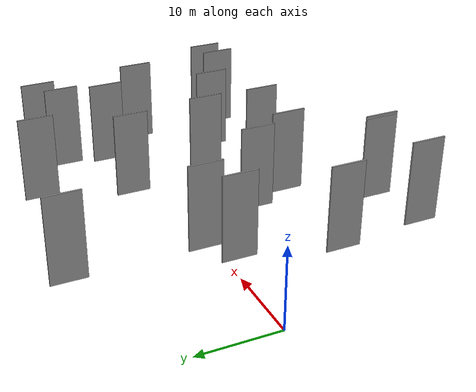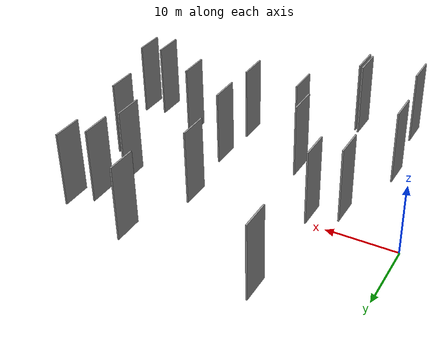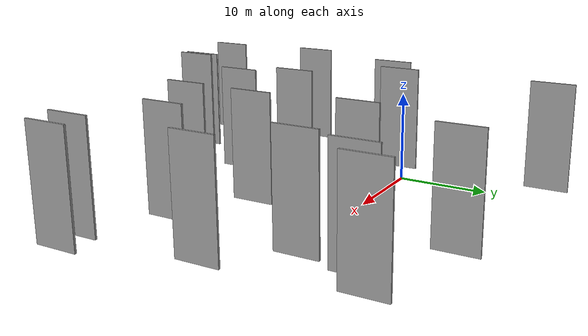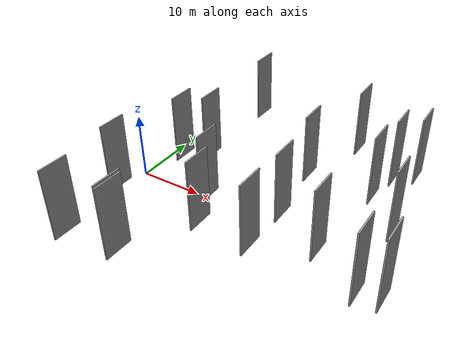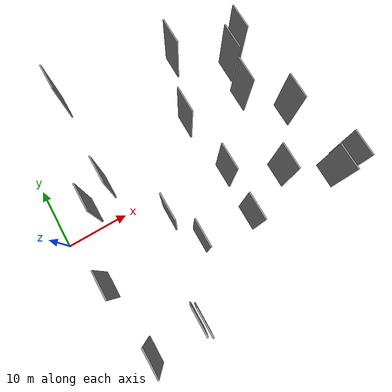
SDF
<sdf version="1.6">
 <world name="default">
  <scene>
   <sky><clouds><speed>12</speed></clouds></sky>
   <ambient>0.4 0.4 0.4 1</ambient>
   <background>0.7 0.7 0.7 1</background>
   <shadows>1</shadows>
  </scene>
  <gravity>0 0 -9.8066</gravity>
  <magnetic_field>6e-06 2.3e-05 -4.2e-05</magnetic_field>
  <physics default="0" name="default_physics" type="ode">
   <ode>
    <solver>
     <type>quick</type>
     <iters>10</iters>
     <sor>1.0</sor>
     <use_dynamic_moi_rescaling>0</use_dynamic_moi_rescaling>
    </solver>
    <constraints>
     <cfm>0</cfm>
     <erp>0.2</erp>
     <contact_max_correcting_vel>100</contact_max_correcting_vel>
     <contact_surface_layer>0.001</contact_surface_layer>
    </constraints>
   </ode>
   <max_step_size>0.004</max_step_size>
   <real_time_factor>1</real_time_factor>
   <real_time_update_rate>250</real_time_update_rate>
  </physics>
  <light name="sun" type="directional">
   <pose>0 0 10 0 0 0</pose>
   <diffuse>0.8 0.8 0.8 1</diffuse>
   <specular>0.2 0.2 0.2 1</specular>
   <attenuation>
    <range>1000</range>
    <constant>0.9</constant>
    <linear>0.01</linear>
    <quadratic>0.001</quadratic>
   </attenuation>
   <direction>-0.5 0.1 -0.9</direction>
  </light>
  <model name="grey_wall_1">
   <static>1</static>
   <pose>42.0587 -9.9786 5.0 0.000000 0.000000 1.570796</pose>
   <link name="link">
    <pose>0 0 5.00 0 0 0</pose>
    <collision name="collision"><geometry><box><size>4.00 0.2 10.00</size></box></geometry></collision>
    <visual name="visual">
     <cast_shadows>0</cast_shadows>
     <geometry><box><size>4.00 0.2 10.00</size></box></geometry>
     <material>
      <script>
       <uri>model://grey_wall/materials/scripts</uri>
       <uri>model://grey_wall/materials/textures</uri>
       <name>vrc/grey_wall</name>
      </script>
     </material>
    </visual>
   </link>
  </model>
  <model name="grey_wall_2">
   <static>1</static>
   <pose>25.6457 -10.2068 5.0 0.000000 0.000000 1.570796</pose>
   <link name="link">
    <pose>0 0 5.00 0 0 0</pose>
    <collision name="collision"><geometry><box><size>4.00 0.2 10.00</size></box></geometry></collision>
    <visual name="visual">
     <cast_shadows>0</cast_shadows>
     <geometry><box><size>4.00 0.2 10.00</size></box></geometry>
     <material>
      <script>
       <uri>model://grey_wall/materials/scripts</uri>
       <uri>model://grey_wall/materials/textures</uri>
       <name>vrc/grey_wall</name>
      </script>
     </material>
    </visual>
   </link>
  </model>
  <model name="grey_wall_3">
   <static>1</static>
   <pose>39.0529 1.0289 5.0 0.000000 0.000000 1.570796</pose>
   <link name="link">
    <pose>0 0 5.00 0 0 0</pose>
    <collision name="collision"><geometry><box><size>4.00 0.2 10.00</size></box></geometry></collision>
    <visual name="visual">
     <cast_shadows>0</cast_shadows>
     <geometry><box><size>4.00 0.2 10.00</size></box></geometry>
     <material>
      <script>
       <uri>model://grey_wall/materials/scripts</uri>
       <uri>model://grey_wall/materials/textures</uri>
       <name>vrc/grey_wall</name>
      </script>
     </material>
    </visual>
   </link>
  </model>
  <model name="grey_wall_4">
   <static>1</static>
   <pose>18.0416 -9.7147 5.0 0.000000 0.000000 1.570796</pose>
   <link name="link">
    <pose>0 0 5.00 0 0 0</pose>
    <collision name="collision"><geometry><box><size>4.00 0.2 10.00</size></box></geometry></collision>
    <visual name="visual">
     <cast_shadows>0</cast_shadows>
     <geometry><box><size>4.00 0.2 10.00</size></box></geometry>
     <material>
      <script>
       <uri>model://grey_wall/materials/scripts</uri>
       <uri>model://grey_wall/materials/textures</uri>
       <name>vrc/grey_wall</name>
      </script>
     </material>
    </visual>
   </link>
  </model>
  <model name="grey_wall_5">
   <static>1</static>
   <pose>10.2596 3.9694 5.0 0.000000 0.000000 1.570796</pose>
   <link name="link">
    <pose>0 0 5.00 0 0 0</pose>
    <collision name="collision"><geometry><box><size>4.00 0.2 10.00</size></box></geometry></collision>
    <visual name="visual">
     <cast_shadows>0</cast_shadows>
     <geometry><box><size>4.00 0.2 10.00</size></box></geometry>
     <material>
      <script>
       <uri>model://grey_wall/materials/scripts</uri>
       <uri>model://grey_wall/materials/textures</uri>
       <name>vrc/grey_wall</name>
      </script>
     </material>
    </visual>
   </link>
  </model>
  <model name="grey_wall_6">
   <static>1</static>
   <pose>37.8726 13.9568 5.0 0.000000 0.000000 1.570796</pose>
   <link name="link">
    <pose>0 0 5.00 0 0 0</pose>
    <collision name="collision"><geometry><box><size>4.00 0.2 10.00</size></box></geometry></collision>
    <visual name="visual">
     <cast_shadows>0</cast_shadows>
     <geometry><box><size>4.00 0.2 10.00</size></box></geometry>
     <material>
      <script>
       <uri>model://grey_wall/materials/scripts</uri>
       <uri>model://grey_wall/materials/textures</uri>
       <name>vrc/grey_wall</name>
      </script>
     </material>
    </visual>
   </link>
  </model>
  <model name="grey_wall_7">
   <static>1</static>
   <pose>39.3252 -10.5999 5.0 0.000000 0.000000 1.570796</pose>
   <link name="link">
    <pose>0 0 5.00 0 0 0</pose>
    <collision name="collision"><geometry><box><size>4.00 0.2 10.00</size></box></geometry></collision>
    <visual name="visual">
     <cast_shadows>0</cast_shadows>
     <geometry><box><size>4.00 0.2 10.00</size></box></geometry>
     <material>
      <script>
       <uri>model://grey_wall/materials/scripts</uri>
       <uri>model://grey_wall/materials/textures</uri>
       <name>vrc/grey_wall</name>
      </script>
     </material>
    </visual>
   </link>
  </model>
  <model name="grey_wall_8">
   <static>1</static>
   <pose>24.8563 6.7742 5.0 0.000000 0.000000 1.570796</pose>
   <link name="link">
    <pose>0 0 5.00 0 0 0</pose>
    <collision name="collision"><geometry><box><size>4.00 0.2 10.00</size></box></geometry></collision>
    <visual name="visual">
     <cast_shadows>0</cast_shadows>
     <geometry><box><size>4.00 0.2 10.00</size></box></geometry>
     <material>
      <script>
       <uri>model://grey_wall/materials/scripts</uri>
       <uri>model://grey_wall/materials/textures</uri>
       <name>vrc/grey_wall</name>
      </script>
     </material>
    </visual>
   </link>
  </model>
  <model name="grey_wall_9">
   <static>1</static>
   <pose>6.9019 1.7199 5.0 0.000000 0.000000 1.570796</pose>
   <link name="link">
    <pose>0 0 5.00 0 0 0</pose>
    <collision name="collision"><geometry><box><size>4.00 0.2 10.00</size></box></geometry></collision>
    <visual name="visual">
     <cast_shadows>0</cast_shadows>
     <geometry><box><size>4.00 0.2 10.00</size></box></geometry>
     <material>
      <script>
       <uri>model://grey_wall/materials/scripts</uri>
       <uri>model://grey_wall/materials/textures</uri>
       <name>vrc/grey_wall</name>
      </script>
     </material>
    </visual>
   </link>
  </model>
  <model name="grey_wall_10">
   <static>1</static>
   <pose>15.8136 -4.7263 5.0 0.000000 0.000000 1.570796</pose>
   <link name="link">
    <pose>0 0 5.00 0 0 0</pose>
    <collision name="collision"><geometry><box><size>4.00 0.2 10.00</size></box></geometry></collision>
    <visual name="visual">
     <cast_shadows>0</cast_shadows>
     <geometry><box><size>4.00 0.2 10.00</size></box></geometry>
     <material>
      <script>
       <uri>model://grey_wall/materials/scripts</uri>
       <uri>model://grey_wall/materials/textures</uri>
       <name>vrc/grey_wall</name>
      </script>
     </material>
    </visual>
   </link>
  </model>
  <model name="grey_wall_11">
   <static>1</static>
   <pose>25.9571 -2.9390 5.0 0.000000 0.000000 1.570796</pose>
   <link name="link">
    <pose>0 0 5.00 0 0 0</pose>
    <collision name="collision"><geometry><box><size>4.00 0.2 10.00</size></box></geometry></collision>
    <visual name="visual">
     <cast_shadows>0</cast_shadows>
     <geometry><box><size>4.00 0.2 10.00</size></box></geometry>
     <material>
      <script>
       <uri>model://grey_wall/materials/scripts</uri>
       <uri>model://grey_wall/materials/textures</uri>
       <name>vrc/grey_wall</name>
      </script>
     </material>
    </visual>
   </link>
  </model>
  <model name="grey_wall_12">
   <static>1</static>
   <pose>12.9776 -18.8632 5.0 0.000000 0.000000 1.570796</pose>
   <link name="link">
    <pose>0 0 5.00 0 0 0</pose>
    <collision name="collision"><geometry><box><size>4.00 0.2 10.00</size></box></geometry></collision>
    <visual name="visual">
     <cast_shadows>0</cast_shadows>
     <geometry><box><size>4.00 0.2 10.00</size></box></geometry>
     <material>
      <script>
       <uri>model://grey_wall/materials/scripts</uri>
       <uri>model://grey_wall/materials/textures</uri>
       <name>vrc/grey_wall</name>
      </script>
     </material>
    </visual>
   </link>
  </model>
  <model name="grey_wall_13">
   <static>1</static>
   <pose>4.1192 -9.0280 5.0 0.000000 0.000000 1.570796</pose>
   <link name="link">
    <pose>0 0 5.00 0 0 0</pose>
    <collision name="collision"><geometry><box><size>4.00 0.2 10.00</size></box></geometry></collision>
    <visual name="visual">
     <cast_shadows>0</cast_shadows>
     <geometry><box><size>4.00 0.2 10.00</size></box></geometry>
     <material>
      <script>
       <uri>model://grey_wall/materials/scripts</uri>
       <uri>model://grey_wall/materials/textures</uri>
       <name>vrc/grey_wall</name>
      </script>
     </material>
    </visual>
   </link>
  </model>
  <model name="grey_wall_14">
   <static>1</static>
   <pose>32.8627 -6.8001 5.0 0.000000 0.000000 1.570796</pose>
   <link name="link">
    <pose>0 0 5.00 0 0 0</pose>
    <collision name="collision"><geometry><box><size>4.00 0.2 10.00</size></box></geometry></collision>
    <visual name="visual">
     <cast_shadows>0</cast_shadows>
     <geometry><box><size>4.00 0.2 10.00</size></box></geometry>
     <material>
      <script>
       <uri>model://grey_wall/materials/scripts</uri>
       <uri>model://grey_wall/materials/textures</uri>
       <name>vrc/grey_wall</name>
      </script>
     </material>
    </visual>
   </link>
  </model>
  <model name="grey_wall_15">
   <static>1</static>
   <pose>35.2710 11.8261 5.0 0.000000 0.000000 1.570796</pose>
   <link name="link">
    <pose>0 0 5.00 0 0 0</pose>
    <collision name="collision"><geometry><box><size>4.00 0.2 10.00</size></box></geometry></collision>
    <visual name="visual">
     <cast_shadows>0</cast_shadows>
     <geometry><box><size>4.00 0.2 10.00</size></box></geometry>
     <material>
      <script>
       <uri>model://grey_wall/materials/scripts</uri>
       <uri>model://grey_wall/materials/textures</uri>
       <name>vrc/grey_wall</name>
      </script>
     </material>
    </visual>
   </link>
  </model>
  <model name="grey_wall_16">
   <static>1</static>
   <pose>5.3109 -19.6310 5.0 0.000000 0.000000 1.570796</pose>
   <link name="link">
    <pose>0 0 5.00 0 0 0</pose>
    <collision name="collision"><geometry><box><size>4.00 0.2 10.00</size></box></geometry></collision>
    <visual name="visual">
     <cast_shadows>0</cast_shadows>
     <geometry><box><size>4.00 0.2 10.00</size></box></geometry>
     <material>
      <script>
       <uri>model://grey_wall/materials/scripts</uri>
       <uri>model://grey_wall/materials/textures</uri>
       <name>vrc/grey_wall</name>
      </script>
     </material>
    </visual>
   </link>
  </model>
  <model name="grey_wall_17">
   <static>1</static>
   <pose>34.3094 6.5757 5.0 0.000000 0.000000 1.570796</pose>
   <link name="link">
    <pose>0 0 5.00 0 0 0</pose>
    <collision name="collision"><geometry><box><size>4.00 0.2 10.00</size></box></geometry></collision>
    <visual name="visual">
     <cast_shadows>0</cast_shadows>
     <geometry><box><size>4.00 0.2 10.00</size></box></geometry>
     <material>
      <script>
       <uri>model://grey_wall/materials/scripts</uri>
       <uri>model://grey_wall/materials/textures</uri>
       <name>vrc/grey_wall</name>
      </script>
     </material>
    </visual>
   </link>
  </model>
  <model name="grey_wall_18">
   <static>1</static>
   <pose>28.1690 16.7615 5.0 0.000000 0.000000 1.570796</pose>
   <link name="link">
    <pose>0 0 5.00 0 0 0</pose>
    <collision name="collision"><geometry><box><size>4.00 0.2 10.00</size></box></geometry></collision>
    <visual name="visual">
     <cast_shadows>0</cast_shadows>
     <geometry><box><size>4.00 0.2 10.00</size></box></geometry>
     <material>
      <script>
       <uri>model://grey_wall/materials/scripts</uri>
       <uri>model://grey_wall/materials/textures</uri>
       <name>vrc/grey_wall</name>
      </script>
     </material>
    </visual>
   </link>
  </model>
  <model name="grey_wall_19">
   <static>1</static>
   <pose>10.1955 18.8786 5.0 0.000000 0.000000 1.570796</pose>
   <link name="link">
    <pose>0 0 5.00 0 0 0</pose>
    <collision name="collision"><geometry><box><size>4.00 0.2 10.00</size></box></geometry></collision>
    <visual name="visual">
     <cast_shadows>0</cast_shadows>
     <geometry><box><size>4.00 0.2 10.00</size></box></geometry>
     <material>
      <script>
       <uri>model://grey_wall/materials/scripts</uri>
       <uri>model://grey_wall/materials/textures</uri>
       <name>vrc/grey_wall</name>
      </script>
     </material>
    </visual>
   </link>
  </model>
  <model name="grey_wall_20">
   <static>1</static>
   <pose>12.4431 -18.4701 5.0 0.000000 0.000000 1.570796</pose>
   <link name="link">
    <pose>0 0 5.00 0 0 0</pose>
    <collision name="collision"><geometry><box><size>4.00 0.2 10.00</size></box></geometry></collision>
    <visual name="visual">
     <cast_shadows>0</cast_shadows>
     <geometry><box><size>4.00 0.2 10.00</size></box></geometry>
     <material>
      <script>
       <uri>model://grey_wall/materials/scripts</uri>
       <uri>model://grey_wall/materials/textures</uri>
       <name>vrc/grey_wall</name>
      </script>
     </material>
    </visual>
   </link>
  </model>
 </world>
</sdf>
